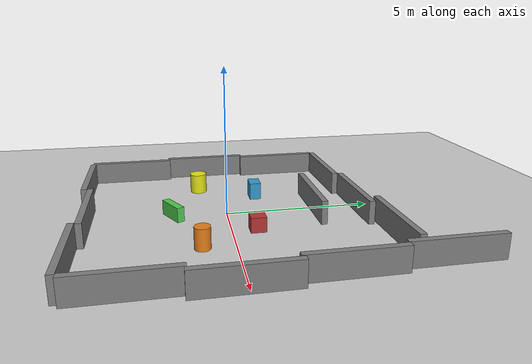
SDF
<sdf version='1.9'>
  <world name='empty'>
    <physics name='1ms' type='ignored'>
      <max_step_size>0.0040000000000000001</max_step_size>
      <real_time_factor>1</real_time_factor>
      <real_time_update_rate>1000</real_time_update_rate>
    </physics>
    <plugin name='gz::sim::systems::Contact' filename='gz-sim-contact-system'/>
    <plugin name='gz::sim::systems::Imu' filename='gz-sim-imu-system'/>
    <plugin name='gz::sim::systems::Physics' filename='gz-sim-physics-system'/>
    <plugin name='gz::sim::systems::SceneBroadcaster' filename='gz-sim-scene-broadcaster-system'/>
    <plugin name='gz::sim::systems::Sensors' filename='gz-sim-sensors-system'/>
    <plugin name='gz::sim::systems::UserCommands' filename='gz-sim-user-commands-system'/>
    <spherical_coordinates>
      <surface_model>EARTH_WGS84</surface_model>
      <world_frame_orientation>ENU</world_frame_orientation>
      <latitude_deg>50.088383999999998</latitude_deg>
      <longitude_deg>19.939128</longitude_deg>
      <elevation>0</elevation>
      <heading_deg>0</heading_deg>
    </spherical_coordinates>
    <gravity>0 0 -9.8</gravity>
    <magnetic_field>6e-06 2.3e-05 -4.2e-05</magnetic_field>
    <atmosphere type='adiabatic'/>
    <scene>
      <ambient>0.4 0.4 0.4 1</ambient>
      <background>0.7 0.7 0.7 1</background>
      <shadows>true</shadows>
    </scene>
    <model name='ground_plane'>
      <static>true</static>
      <link name='link'>
        <collision name='collision'>
          <geometry>
            <plane>
              <normal>0 0 1</normal>
              <size>100 100</size>
            </plane>
          </geometry>
          <surface>
            <friction>
              <ode/>
            </friction>
            <bounce/>
            <contact/>
          </surface>
        </collision>
        <visual name='visual'>
          <geometry>
            <plane>
              <normal>0 0 1</normal>
              <size>100 100</size>
            </plane>
          </geometry>
          <material>
            <ambient>0.8 0.8 0.8 1</ambient>
            <diffuse>0.8 0.8 0.8 1</diffuse>
            <specular>0.8 0.8 0.8 1</specular>
          </material>
        </visual>
        <pose>0 0 0 0 -0 0</pose>
        <inertial>
          <pose>0 0 0 0 -0 0</pose>
          <mass>1</mass>
          <inertia>
            <ixx>1</ixx>
            <ixy>0</ixy>
            <ixz>0</ixz>
            <iyy>1</iyy>
            <iyz>0</iyz>
            <izz>1</izz>
          </inertia>
        </inertial>
        <enable_wind>false</enable_wind>
      </link>
      <pose>0 0 0 0 -0 0</pose>
      <self_collide>false</self_collide>
    </model>
    <model name='box_obstacle_1'>
      <static>true</static>
      <pose>1.5 0.8 0.26861 0 -0 0</pose>
      <link name='link'>
        <collision name='collision'>
          <geometry>
            <box>
              <size>0.5 0.5 0.5</size>
            </box>
          </geometry>
          <surface>
            <friction>
              <ode/>
            </friction>
            <bounce/>
            <contact/>
          </surface>
        </collision>
        <visual name='visual'>
          <geometry>
            <box>
              <size>0.5 0.5 0.5</size>
            </box>
          </geometry>
          <material>
            <ambient>0.7 0.2 0.2 1</ambient>
            <diffuse>0.7 0.2 0.2 1</diffuse>
          </material>
        </visual>
        <pose>0 0 0 0 -0 0</pose>
        <inertial>
          <pose>0 0 0 0 -0 0</pose>
          <mass>1</mass>
          <inertia>
            <ixx>1</ixx>
            <ixy>0</ixy>
            <ixz>0</ixz>
            <iyy>1</iyy>
            <iyz>0</iyz>
            <izz>1</izz>
          </inertia>
        </inertial>
        <enable_wind>false</enable_wind>
      </link>
      <self_collide>false</self_collide>
    </model>
    <model name='box_obstacle_2'>
      <static>true</static>
      <pose>-1.5 1.2 0.309403 0 -0 0</pose>
      <link name='link'>
        <collision name='collision'>
          <geometry>
            <box>
              <size>0.6 0.4 0.6</size>
            </box>
          </geometry>
          <surface>
            <friction>
              <ode/>
            </friction>
            <bounce/>
            <contact/>
          </surface>
        </collision>
        <visual name='visual'>
          <geometry>
            <box>
              <size>0.6 0.4 0.6</size>
            </box>
          </geometry>
          <material>
            <ambient>0.2 0.6 0.8 1</ambient>
            <diffuse>0.2 0.6 0.8 1</diffuse>
          </material>
        </visual>
        <pose>0 0 0 0 -0 0</pose>
        <inertial>
          <pose>0 0 0 0 -0 0</pose>
          <mass>1</mass>
          <inertia>
            <ixx>1</ixx>
            <ixy>0</ixy>
            <ixz>0</ixz>
            <iyy>1</iyy>
            <iyz>0</iyz>
            <izz>1</izz>
          </inertia>
        </inertial>
        <enable_wind>false</enable_wind>
      </link>
      <self_collide>false</self_collide>
    </model>
    <model name='box_obstacle_3'>
      <static>true</static>
      <pose>0 -1.8 0.26507 0 -0 0.5</pose>
      <link name='link'>
        <collision name='collision'>
          <geometry>
            <box>
              <size>1 0.25 0.5</size>
            </box>
          </geometry>
          <surface>
            <friction>
              <ode/>
            </friction>
            <bounce/>
            <contact/>
          </surface>
        </collision>
        <visual name='visual'>
          <geometry>
            <box>
              <size>1 0.25 0.5</size>
            </box>
          </geometry>
          <material>
            <ambient>0.3 0.8 0.3 1</ambient>
            <diffuse>0.3 0.8 0.3 1</diffuse>
          </material>
        </visual>
        <pose>0 0 0 0 -0 0</pose>
        <inertial>
          <pose>0 0 0 0 -0 0</pose>
          <mass>1</mass>
          <inertia>
            <ixx>1</ixx>
            <ixy>0</ixy>
            <ixz>0</ixz>
            <iyy>1</iyy>
            <iyz>0</iyz>
            <izz>1</izz>
          </inertia>
        </inertial>
        <enable_wind>false</enable_wind>
      </link>
      <self_collide>false</self_collide>
    </model>
    <model name='cylinder_obstacle_1'>
      <static>true</static>
      <pose>2.5 -1 0.369033 0 -0 0</pose>
      <link name='link'>
        <collision name='collision'>
          <geometry>
            <cylinder>
              <radius>0.25</radius>
              <length>0.69999999999999996</length>
            </cylinder>
          </geometry>
          <surface>
            <friction>
              <ode/>
            </friction>
            <bounce/>
            <contact/>
          </surface>
        </collision>
        <visual name='visual'>
          <geometry>
            <cylinder>
              <radius>0.25</radius>
              <length>0.69999999999999996</length>
            </cylinder>
          </geometry>
          <material>
            <ambient>0.9 0.5 0.1 1</ambient>
            <diffuse>0.9 0.5 0.1 1</diffuse>
          </material>
        </visual>
        <pose>0 0 0 0 -0 0</pose>
        <inertial>
          <pose>0 0 0 0 -0 0</pose>
          <mass>1</mass>
          <inertia>
            <ixx>1</ixx>
            <ixy>0</ixy>
            <ixz>0</ixz>
            <iyy>1</iyy>
            <iyz>0</iyz>
            <izz>1</izz>
          </inertia>
        </inertial>
        <enable_wind>false</enable_wind>
      </link>
      <self_collide>false</self_collide>
    </model>
    <model name='cylinder_obstacle_2'>
      <static>true</static>
      <pose>-2.5 -0.8 0.358016 0 -0 0</pose>
      <link name='link'>
        <collision name='collision'>
          <geometry>
            <cylinder>
              <radius>0.29999999999999999</radius>
              <length>0.69999999999999996</length>
            </cylinder>
          </geometry>
          <surface>
            <friction>
              <ode/>
            </friction>
            <bounce/>
            <contact/>
          </surface>
        </collision>
        <visual name='visual'>
          <geometry>
            <cylinder>
              <radius>0.29999999999999999</radius>
              <length>0.69999999999999996</length>
            </cylinder>
          </geometry>
          <material>
            <ambient>0.9 0.9 0.1 1</ambient>
            <diffuse>0.9 0.9 0.1 1</diffuse>
          </material>
        </visual>
        <pose>0 0 0 0 -0 0</pose>
        <inertial>
          <pose>0 0 0 0 -0 0</pose>
          <mass>1</mass>
          <inertia>
            <ixx>1</ixx>
            <ixy>0</ixy>
            <ixz>0</ixz>
            <iyy>1</iyy>
            <iyz>0</iyz>
            <izz>1</izz>
          </inertia>
        </inertial>
        <enable_wind>false</enable_wind>
      </link>
      <self_collide>false</self_collide>
    </model>
    <model name='wall_obstacle_1'>
      <static>true</static>
      <pose>0 3 0.418108 0 -0 0</pose>
      <link name='link'>
        <collision name='collision'>
          <geometry>
            <box>
              <size>3 0.2 0.8</size>
            </box>
          </geometry>
          <surface>
            <friction>
              <ode/>
            </friction>
            <bounce/>
            <contact/>
          </surface>
        </collision>
        <visual name='visual'>
          <geometry>
            <box>
              <size>3 0.2 0.8</size>
            </box>
          </geometry>
          <material>
            <ambient>0.5 0.5 0.5 1</ambient>
            <diffuse>0.5 0.5 0.5 1</diffuse>
          </material>
        </visual>
        <pose>0 0 0 0 -0 0</pose>
        <inertial>
          <pose>0 0 0 0 -0 0</pose>
          <mass>1</mass>
          <inertia>
            <ixx>1</ixx>
            <ixy>0</ixy>
            <ixz>0</ixz>
            <iyy>1</iyy>
            <iyz>0</iyz>
            <izz>1</izz>
          </inertia>
        </inertial>
        <enable_wind>false</enable_wind>
      </link>
      <self_collide>false</self_collide>
    </model>
    <model name='wall_obstacle_1_1_1_1_1'>
      <static>true</static>
      <pose>4.87743 2.79174 0.42812 0 -0 1.57043</pose>
      <link name='link'>
        <collision name='collision'>
          <geometry>
            <box>
              <size>3 0.2 0.8</size>
            </box>
          </geometry>
          <surface>
            <friction>
              <ode/>
            </friction>
            <bounce/>
            <contact/>
          </surface>
        </collision>
        <visual name='visual'>
          <geometry>
            <box>
              <size>3 0.2 0.8</size>
            </box>
          </geometry>
          <material>
            <ambient>0.5 0.5 0.5 1</ambient>
            <diffuse>0.5 0.5 0.5 1</diffuse>
          </material>
        </visual>
        <pose>0 0 0 0 -0 0</pose>
        <inertial>
          <pose>0 0 0 0 -0 0</pose>
          <mass>1</mass>
          <inertia>
            <ixx>1</ixx>
            <ixy>0</ixy>
            <ixz>0</ixz>
            <iyy>1</iyy>
            <iyz>0</iyz>
            <izz>1</izz>
          </inertia>
        </inertial>
        <enable_wind>false</enable_wind>
      </link>
      <self_collide>false</self_collide>
    </model>
    <model name='wall_obstacle_1_1_1_1_1_1'>
      <static>true</static>
      <pose>5.09993 -0.097462 0.42812 0 -0 1.57043</pose>
      <link name='link'>
        <collision name='collision'>
          <geometry>
            <box>
              <size>3 0.2 0.8</size>
            </box>
          </geometry>
          <surface>
            <friction>
              <ode/>
            </friction>
            <bounce/>
            <contact/>
          </surface>
        </collision>
        <visual name='visual'>
          <geometry>
            <box>
              <size>3 0.2 0.8</size>
            </box>
          </geometry>
          <material>
            <ambient>0.5 0.5 0.5 1</ambient>
            <diffuse>0.5 0.5 0.5 1</diffuse>
          </material>
        </visual>
        <pose>0 0 0 0 -0 0</pose>
        <inertial>
          <pose>0 0 0 0 -0 0</pose>
          <mass>1</mass>
          <inertia>
            <ixx>1</ixx>
            <ixy>0</ixy>
            <ixz>0</ixz>
            <iyy>1</iyy>
            <iyz>0</iyz>
            <izz>1</izz>
          </inertia>
        </inertial>
        <enable_wind>false</enable_wind>
      </link>
      <self_collide>false</self_collide>
    </model>
    <model name='wall_obstacle_1_1_1_1_1_1_1'>
      <static>true</static>
      <pose>4.88572 -3.036 0.42812 0 -0 1.57043</pose>
      <link name='link'>
        <collision name='collision'>
          <geometry>
            <box>
              <size>3 0.2 0.8</size>
            </box>
          </geometry>
          <surface>
            <friction>
              <ode/>
            </friction>
            <bounce/>
            <contact/>
          </surface>
        </collision>
        <visual name='visual'>
          <geometry>
            <box>
              <size>3 0.2 0.8</size>
            </box>
          </geometry>
          <material>
            <ambient>0.5 0.5 0.5 1</ambient>
            <diffuse>0.5 0.5 0.5 1</diffuse>
          </material>
        </visual>
        <pose>0 0 0 0 -0 0</pose>
        <inertial>
          <pose>0 0 0 0 -0 0</pose>
          <mass>1</mass>
          <inertia>
            <ixx>1</ixx>
            <ixy>0</ixy>
            <ixz>0</ixz>
            <iyy>1</iyy>
            <iyz>0</iyz>
            <izz>1</izz>
          </inertia>
        </inertial>
        <enable_wind>false</enable_wind>
      </link>
      <self_collide>false</self_collide>
    </model>
    <model name='wall_obstacle_1_1_1_1_1_1_1_1'>
      <static>true</static>
      <pose>3.33118 -4.67383 0.42812 0 -0 0.021567</pose>
      <link name='link'>
        <collision name='collision'>
          <geometry>
            <box>
              <size>3 0.2 0.8</size>
            </box>
          </geometry>
          <surface>
            <friction>
              <ode/>
            </friction>
            <bounce/>
            <contact/>
          </surface>
        </collision>
        <visual name='visual'>
          <geometry>
            <box>
              <size>3 0.2 0.8</size>
            </box>
          </geometry>
          <material>
            <ambient>0.5 0.5 0.5 1</ambient>
            <diffuse>0.5 0.5 0.5 1</diffuse>
          </material>
        </visual>
        <pose>0 0 0 0 -0 0</pose>
        <inertial>
          <pose>0 0 0 0 -0 0</pose>
          <mass>1</mass>
          <inertia>
            <ixx>1</ixx>
            <ixy>0</ixy>
            <ixz>0</ixz>
            <iyy>1</iyy>
            <iyz>0</iyz>
            <izz>1</izz>
          </inertia>
        </inertial>
        <enable_wind>false</enable_wind>
      </link>
      <self_collide>false</self_collide>
    </model>
    <model name='wall_obstacle_1_1_1_1_1_1_1_1_1'>
      <static>true</static>
      <pose>0.405735 -4.52818 0.42812 0 -0 0.021567</pose>
      <link name='link'>
        <collision name='collision'>
          <geometry>
            <box>
              <size>3 0.2 0.8</size>
            </box>
          </geometry>
          <surface>
            <friction>
              <ode/>
            </friction>
            <bounce/>
            <contact/>
          </surface>
        </collision>
        <visual name='visual'>
          <geometry>
            <box>
              <size>3 0.2 0.8</size>
            </box>
          </geometry>
          <material>
            <ambient>0.5 0.5 0.5 1</ambient>
            <diffuse>0.5 0.5 0.5 1</diffuse>
          </material>
        </visual>
        <pose>0 0 0 0 -0 0</pose>
        <inertial>
          <pose>0 0 0 0 -0 0</pose>
          <mass>1</mass>
          <inertia>
            <ixx>1</ixx>
            <ixy>0</ixy>
            <ixz>0</ixz>
            <iyy>1</iyy>
            <iyz>0</iyz>
            <izz>1</izz>
          </inertia>
        </inertial>
        <enable_wind>false</enable_wind>
      </link>
      <self_collide>false</self_collide>
    </model>
    <model name='wall_obstacle_1_1_1_1_1_1_1_1_1_1'>
      <static>true</static>
      <pose>-2.54582 -4.80831 0.42812 0 -0 0.021567</pose>
      <link name='link'>
        <collision name='collision'>
          <geometry>
            <box>
              <size>3 0.2 0.8</size>
            </box>
          </geometry>
          <surface>
            <friction>
              <ode/>
            </friction>
            <bounce/>
            <contact/>
          </surface>
        </collision>
        <visual name='visual'>
          <geometry>
            <box>
              <size>3 0.2 0.8</size>
            </box>
          </geometry>
          <material>
            <ambient>0.5 0.5 0.5 1</ambient>
            <diffuse>0.5 0.5 0.5 1</diffuse>
          </material>
        </visual>
        <pose>0 0 0 0 -0 0</pose>
        <inertial>
          <pose>0 0 0 0 -0 0</pose>
          <mass>1</mass>
          <inertia>
            <ixx>1</ixx>
            <ixy>0</ixy>
            <ixz>0</ixz>
            <iyy>1</iyy>
            <iyz>0</iyz>
            <izz>1</izz>
          </inertia>
        </inertial>
        <enable_wind>false</enable_wind>
      </link>
      <self_collide>false</self_collide>
    </model>
    <model name='wall_obstacle_1_1_1_1_1_1_1_2'>
      <static>true</static>
      <pose>-4.16863 -3.34065 0.42812 0 -0 1.57043</pose>
      <link name='link'>
        <collision name='collision'>
          <geometry>
            <box>
              <size>3 0.2 0.8</size>
            </box>
          </geometry>
          <surface>
            <friction>
              <ode/>
            </friction>
            <bounce/>
            <contact/>
          </surface>
        </collision>
        <visual name='visual'>
          <geometry>
            <box>
              <size>3 0.2 0.8</size>
            </box>
          </geometry>
          <material>
            <ambient>0.5 0.5 0.5 1</ambient>
            <diffuse>0.5 0.5 0.5 1</diffuse>
          </material>
        </visual>
        <pose>0 0 0 0 -0 0</pose>
        <inertial>
          <pose>0 0 0 0 -0 0</pose>
          <mass>1</mass>
          <inertia>
            <ixx>1</ixx>
            <ixy>0</ixy>
            <ixz>0</ixz>
            <iyy>1</iyy>
            <iyz>0</iyz>
            <izz>1</izz>
          </inertia>
        </inertial>
        <enable_wind>false</enable_wind>
      </link>
      <self_collide>false</self_collide>
    </model>
    <model name='wall_obstacle_1_1_1_1_1_1_2'>
      <static>true</static>
      <pose>-4.37772 -0.400324 0.42812 0 -0 1.57043</pose>
      <link name='link'>
        <collision name='collision'>
          <geometry>
            <box>
              <size>3 0.2 0.8</size>
            </box>
          </geometry>
          <surface>
            <friction>
              <ode/>
            </friction>
            <bounce/>
            <contact/>
          </surface>
        </collision>
        <visual name='visual'>
          <geometry>
            <box>
              <size>3 0.2 0.8</size>
            </box>
          </geometry>
          <material>
            <ambient>0.5 0.5 0.5 1</ambient>
            <diffuse>0.5 0.5 0.5 1</diffuse>
          </material>
        </visual>
        <pose>0 0 0 0 -0 0</pose>
        <inertial>
          <pose>0 0 0 0 -0 0</pose>
          <mass>1</mass>
          <inertia>
            <ixx>1</ixx>
            <ixy>0</ixy>
            <ixz>0</ixz>
            <iyy>1</iyy>
            <iyz>0</iyz>
            <izz>1</izz>
          </inertia>
        </inertial>
        <enable_wind>false</enable_wind>
      </link>
      <self_collide>false</self_collide>
    </model>
    <model name='wall_obstacle_1_1_1_1_1_1_2_1'>
      <static>true</static>
      <pose>-4.17091 2.55898 0.42812 0 -0 1.57043</pose>
      <link name='link'>
        <collision name='collision'>
          <geometry>
            <box>
              <size>3 0.2 0.8</size>
            </box>
          </geometry>
          <surface>
            <friction>
              <ode/>
            </friction>
            <bounce/>
            <contact/>
          </surface>
        </collision>
        <visual name='visual'>
          <geometry>
            <box>
              <size>3 0.2 0.8</size>
            </box>
          </geometry>
          <material>
            <ambient>0.5 0.5 0.5 1</ambient>
            <diffuse>0.5 0.5 0.5 1</diffuse>
          </material>
        </visual>
        <pose>0 0 0 0 -0 0</pose>
        <inertial>
          <pose>0 0 0 0 -0 0</pose>
          <mass>1</mass>
          <inertia>
            <ixx>1</ixx>
            <ixy>0</ixy>
            <ixz>0</ixz>
            <iyy>1</iyy>
            <iyz>0</iyz>
            <izz>1</izz>
          </inertia>
        </inertial>
        <enable_wind>false</enable_wind>
      </link>
      <self_collide>false</self_collide>
    </model>
    <model name='wall_obstacle_1_1_1_1_1_1_1_1_1_1_1'>
      <static>true</static>
      <pose>-2.69917 4.20508 0.42812 0 -0 0.021567</pose>
      <link name='link'>
        <collision name='collision'>
          <geometry>
            <box>
              <size>3 0.2 0.8</size>
            </box>
          </geometry>
          <surface>
            <friction>
              <ode/>
            </friction>
            <bounce/>
            <contact/>
          </surface>
        </collision>
        <visual name='visual'>
          <geometry>
            <box>
              <size>3 0.2 0.8</size>
            </box>
          </geometry>
          <material>
            <ambient>0.5 0.5 0.5 1</ambient>
            <diffuse>0.5 0.5 0.5 1</diffuse>
          </material>
        </visual>
        <pose>0 0 0 0 -0 0</pose>
        <inertial>
          <pose>0 0 0 0 -0 0</pose>
          <mass>1</mass>
          <inertia>
            <ixx>1</ixx>
            <ixy>0</ixy>
            <ixz>0</ixz>
            <iyy>1</iyy>
            <iyz>0</iyz>
            <izz>1</izz>
          </inertia>
        </inertial>
        <enable_wind>false</enable_wind>
      </link>
      <self_collide>false</self_collide>
    </model>
    <model name='wall_obstacle_1_1_1_1_1_1_1_1_1_2'>
      <static>true</static>
      <pose>0.258567 4.48156 0.413269 0 -0 0.021567</pose>
      <link name='link'>
        <collision name='collision'>
          <geometry>
            <box>
              <size>3 0.2 0.8</size>
            </box>
          </geometry>
          <surface>
            <friction>
              <ode/>
            </friction>
            <bounce/>
            <contact/>
          </surface>
        </collision>
        <visual name='visual'>
          <geometry>
            <box>
              <size>3 0.2 0.8</size>
            </box>
          </geometry>
          <material>
            <ambient>0.5 0.5 0.5 1</ambient>
            <diffuse>0.5 0.5 0.5 1</diffuse>
          </material>
        </visual>
        <pose>0 0 0 0 -0 0</pose>
        <inertial>
          <pose>0 0 0 0 -0 0</pose>
          <mass>1</mass>
          <inertia>
            <ixx>1</ixx>
            <ixy>0</ixy>
            <ixz>0</ixz>
            <iyy>1</iyy>
            <iyz>0</iyz>
            <izz>1</izz>
          </inertia>
        </inertial>
        <enable_wind>false</enable_wind>
      </link>
      <self_collide>false</self_collide>
    </model>
    <model name='wall_obstacle_1_1_1_1_1_1_1_1_1_3'>
      <static>true</static>
      <pose>3.0602 4.7546 0.509283 0 -0 0.021567</pose>
      <link name='link'>
        <collision name='collision'>
          <geometry>
            <box>
              <size>3 0.2 0.8</size>
            </box>
          </geometry>
          <surface>
            <friction>
              <ode/>
            </friction>
            <bounce/>
            <contact/>
          </surface>
        </collision>
        <visual name='visual'>
          <geometry>
            <box>
              <size>3 0.2 0.8</size>
            </box>
          </geometry>
          <material>
            <ambient>0.5 0.5 0.5 1</ambient>
            <diffuse>0.5 0.5 0.5 1</diffuse>
          </material>
        </visual>
        <pose>0 0 0 0 -0 0</pose>
        <inertial>
          <pose>0 0 0 0 -0 0</pose>
          <mass>1</mass>
          <inertia>
            <ixx>1</ixx>
            <ixy>0</ixy>
            <ixz>0</ixz>
            <iyy>1</iyy>
            <iyz>0</iyz>
            <izz>1</izz>
          </inertia>
        </inertial>
        <enable_wind>false</enable_wind>
      </link>
      <self_collide>false</self_collide>
    </model>
    <model name='wall_obstacle_1_1_1_1_1_2'>
      <static>true</static>
      <pose>4.673 5.77178 0.42812 0 -0 1.57043</pose>
      <link name='link'>
        <collision name='collision'>
          <geometry>
            <box>
              <size>3 0.2 0.8</size>
            </box>
          </geometry>
          <surface>
            <friction>
              <ode/>
            </friction>
            <bounce/>
            <contact/>
          </surface>
        </collision>
        <visual name='visual'>
          <geometry>
            <box>
              <size>3 0.2 0.8</size>
            </box>
          </geometry>
          <material>
            <ambient>0.5 0.5 0.5 1</ambient>
            <diffuse>0.5 0.5 0.5 1</diffuse>
          </material>
        </visual>
        <pose>0 0 0 0 -0 0</pose>
        <inertial>
          <pose>0 0 0 0 -0 0</pose>
          <mass>1</mass>
          <inertia>
            <ixx>1</ixx>
            <ixy>0</ixy>
            <ixz>0</ixz>
            <iyy>1</iyy>
            <iyz>0</iyz>
            <izz>1</izz>
          </inertia>
        </inertial>
        <enable_wind>false</enable_wind>
      </link>
      <self_collide>false</self_collide>
    </model>
    <light name='sun' type='directional'>
      <pose>0 0 10 0 -0 0</pose>
      <cast_shadows>true</cast_shadows>
      <intensity>1</intensity>
      <direction>-0.5 0.1 -0.9</direction>
      <diffuse>0.8 0.8 0.8 1</diffuse>
      <specular>0.2 0.2 0.2 1</specular>
      <attenuation>
        <range>1000</range>
        <linear>0.01</linear>
        <constant>0.90000000000000002</constant>
        <quadratic>0.001</quadratic>
      </attenuation>
      <spot>
        <inner_angle>0</inner_angle>
        <outer_angle>0</outer_angle>
        <falloff>0</falloff>
      </spot>
    </light>
    <light name='directionallight' type='directional'>
      <pose>4.87829 -4.8279 2 0 -0 0</pose>
      <cast_shadows>true</cast_shadows>
      <intensity>1</intensity>
      <direction>0 0 -1</direction>
      <diffuse>0.8 0.8 0.8 1</diffuse>
      <specular>0.2 0.2 0.2 1</specular>
      <attenuation>
        <range>1000</range>
        <linear>0.01</linear>
        <constant>0.90000000000000002</constant>
        <quadratic>0.001</quadratic>
      </attenuation>
      <spot>
        <inner_angle>0</inner_angle>
        <outer_angle>0</outer_angle>
        <falloff>0</falloff>
      </spot>
    </light>
    <light name='pointlight' type='point'>
      <pose>5.28017 -4.55703 2 0 -0 0</pose>
      <cast_shadows>false</cast_shadows>
      <intensity>1</intensity>
      <direction>0 0 -1</direction>
      <diffuse>0.5 0.5 0.5 1</diffuse>
      <specular>0.5 0.5 0.5 1</specular>
      <attenuation>
        <range>4</range>
        <linear>0.5</linear>
        <constant>0.20000000000000001</constant>
        <quadratic>0.01</quadratic>
      </attenuation>
      <spot>
        <inner_angle>0</inner_angle>
        <outer_angle>0</outer_angle>
        <falloff>0</falloff>
      </spot>
    </light>
  </world>
</sdf>
